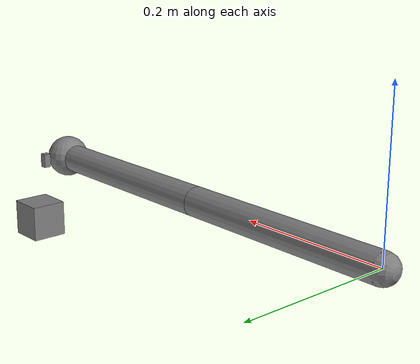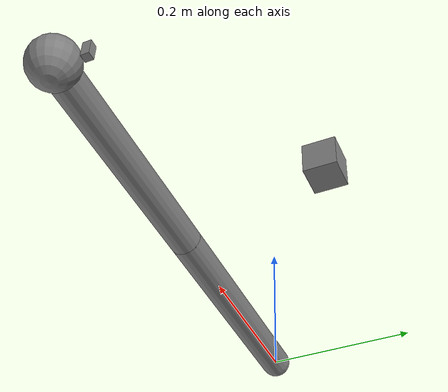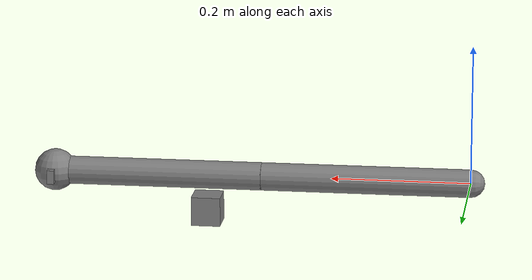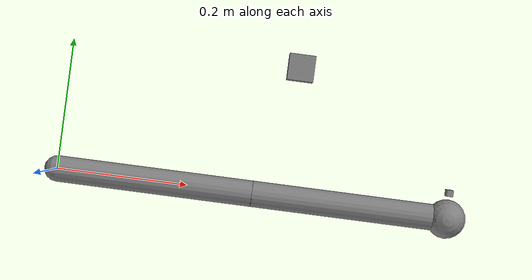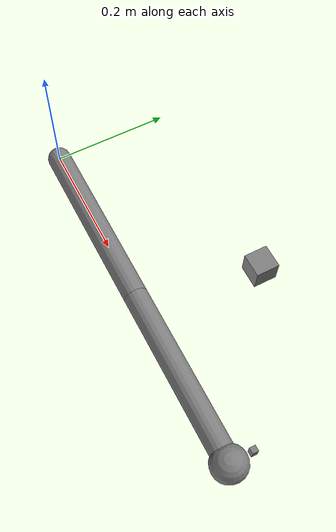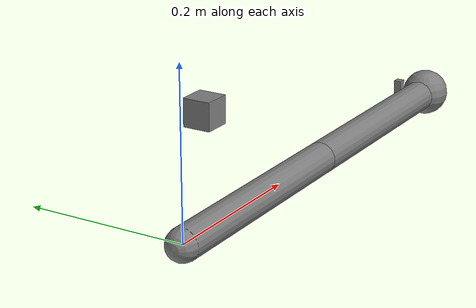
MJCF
<mujoco model="two_joint_arm">
  <compiler angle="radian"/>
  <option timestep="0.002" gravity="0 0 -9.81"/>
  <default>
    <geom contype="0" conaffinity="0"/>
    <joint damping="0.5"/>
  </default>
  <worldbody>
    <body name="link1" pos="0 0 0">
      <joint name="j1" type="hinge" axis="0 0 1" range="-3.14 3.14"/>
      <geom type="capsule" fromto="0 0 0 0.3 0 0" size="0.02"/>
      <body name="link2" pos="0.3 0 0">
        <joint name="j2" type="hinge" axis="0 0 1" range="-3.14 3.14"/>
        <geom type="capsule" fromto="0 0 0 0.3 0 0" size="0.02"/>
        <body name="end_effector" pos="0.3 0 0">
          <geom name="ee_sphere" type="sphere" size="0.03"/>
          <body name="finger" pos="0 0 0">
            <joint name="j_grip" type="slide" axis="0 1 0" range="-0.04 0.04" damping="1.0"/>
            <geom name="finger_tip" type="box" size="0.005 0.005 0.01" pos="0 0.04 0"
                  contype="1" conaffinity="1"/>
          </body>
        </body>
      </body>
    </body>
    <body name="block" pos="0.35 0.20 0.01">
      <geom name="block_geom" type="box" size="0.02 0.02 0.02" contype="1" conaffinity="1"/>
    </body>
  </worldbody>
  <actuator>
    <position name="a1" joint="j1" kp="50"/>
    <position name="a2" joint="j2" kp="50"/>
    <position name="a_grip" joint="j_grip" kp="100"/>
  </actuator>
</mujoco>
